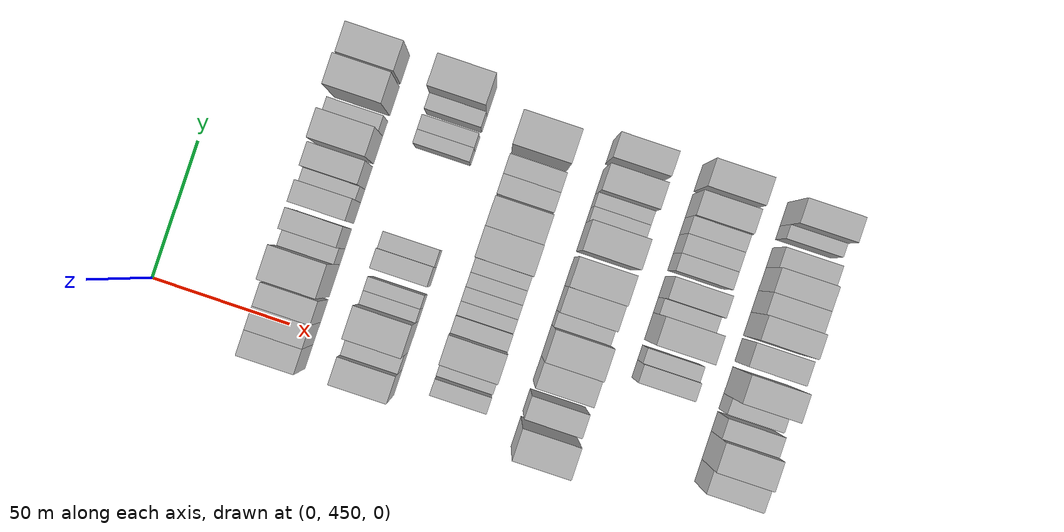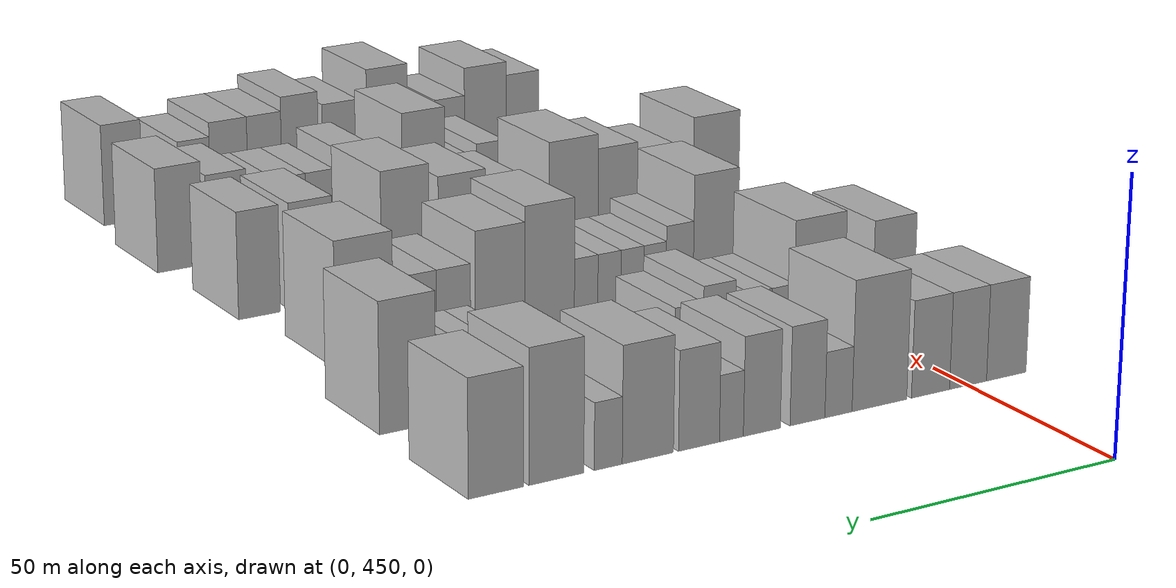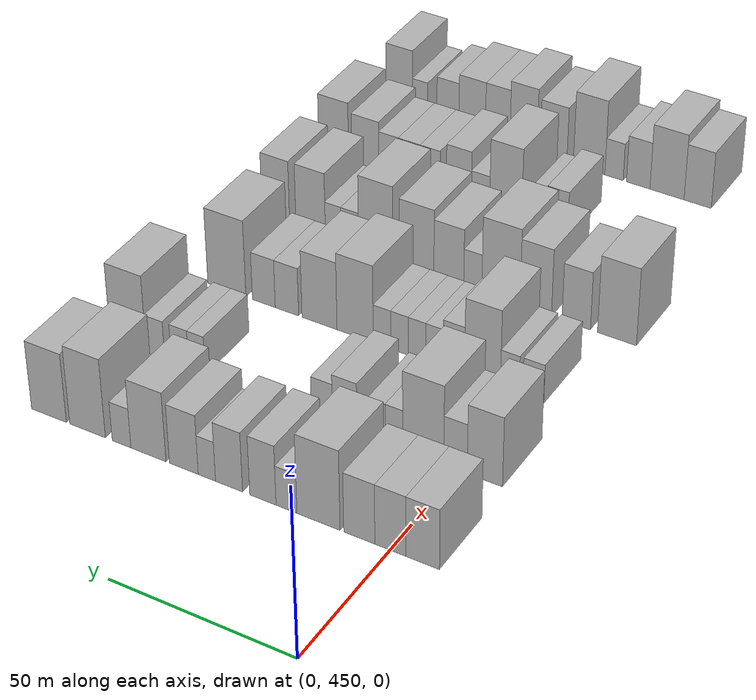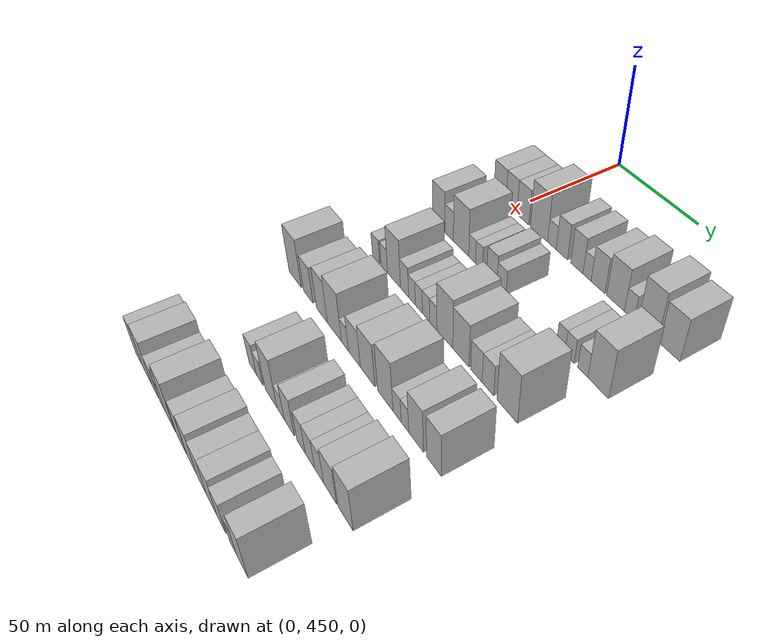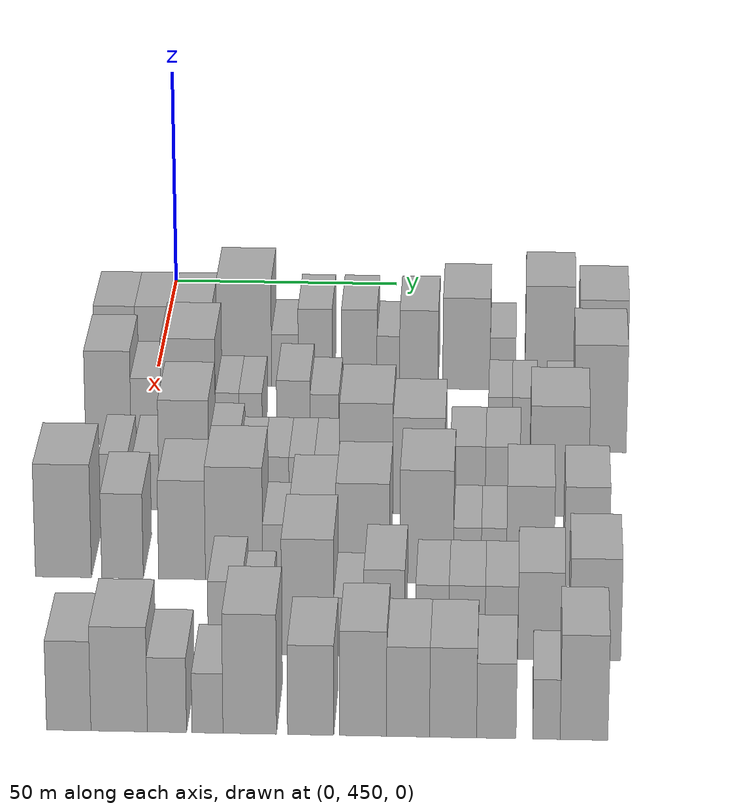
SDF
<sdf version="1.6">
 <world name="default">
  <model name="building_110">
   <static>1</static>
   <pose>50.0000 441.4744 0 0.000000 0.000000 0.000000</pose>
   <link name="link">
    <pose>0 0 9.00 0 0 0</pose>
    <collision name="collision"><geometry><box><size>20.0000 8.8211 18.0000</size></box></geometry></collision>
    <visual name="visual">
     <cast_shadows>0</cast_shadows>
     <geometry><box><size>20.0000 8.8211 18.0000</size></box></geometry>
     <material>
      <script>
       <uri>model://HANNAS_wall/materials/scripts</uri>
       <uri>model://HANNAS_wall/materials/textures</uri>
       <name>vrc/HANNAS_wall</name>
      </script>
     </material>
    </visual>
   </link>
  </model>
  <model name="building_111">
   <static>1</static>
   <pose>50.0000 449.9578 0 0.000000 0.000000 0.000000</pose>
   <link name="link">
    <pose>0 0 9.00 0 0 0</pose>
    <collision name="collision"><geometry><box><size>20.0000 8.1456 18.0000</size></box></geometry></collision>
    <visual name="visual">
     <cast_shadows>0</cast_shadows>
     <geometry><box><size>20.0000 8.1456 18.0000</size></box></geometry>
     <material>
      <script>
       <uri>model://HANNAS_wall/materials/scripts</uri>
       <uri>model://HANNAS_wall/materials/textures</uri>
       <name>vrc/HANNAS_wall</name>
      </script>
     </material>
    </visual>
   </link>
  </model>
  <model name="building_112">
   <static>1</static>
   <pose>50.0000 458.1812 0 0.000000 0.000000 0.000000</pose>
   <link name="link">
    <pose>0 0 9.00 0 0 0</pose>
    <collision name="collision"><geometry><box><size>20.0000 8.3010 18.0000</size></box></geometry></collision>
    <visual name="visual">
     <cast_shadows>0</cast_shadows>
     <geometry><box><size>20.0000 8.3010 18.0000</size></box></geometry>
     <material>
      <script>
       <uri>model://HANNAS_wall/materials/scripts</uri>
       <uri>model://HANNAS_wall/materials/textures</uri>
       <name>vrc/HANNAS_wall</name>
      </script>
     </material>
    </visual>
   </link>
  </model>
  <model name="building_113">
   <static>1</static>
   <pose>50.0000 469.1792 0 0.000000 0.000000 0.000000</pose>
   <link name="link">
    <pose>0 0 12.00 0 0 0</pose>
    <collision name="collision"><geometry><box><size>20.0000 11.6951 24.0000</size></box></geometry></collision>
    <visual name="visual">
     <cast_shadows>0</cast_shadows>
     <geometry><box><size>20.0000 11.6951 24.0000</size></box></geometry>
     <material>
      <script>
       <uri>model://HANNAS_wall/materials/scripts</uri>
       <uri>model://HANNAS_wall/materials/textures</uri>
       <name>vrc/HANNAS_wall</name>
      </script>
     </material>
    </visual>
   </link>
  </model>
  <model name="building_114">
   <static>1</static>
   <pose>50.0000 477.8852 0 0.000000 0.000000 0.000000</pose>
   <link name="link">
    <pose>0 0 6.00 0 0 0</pose>
    <collision name="collision"><geometry><box><size>20.0000 5.7170 12.0000</size></box></geometry></collision>
    <visual name="visual">
     <cast_shadows>0</cast_shadows>
     <geometry><box><size>20.0000 5.7170 12.0000</size></box></geometry>
     <material>
      <script>
       <uri>model://HANNAS_wall/materials/scripts</uri>
       <uri>model://HANNAS_wall/materials/textures</uri>
       <name>vrc/HANNAS_wall</name>
      </script>
     </material>
    </visual>
   </link>
  </model>
  <model name="building_115">
   <static>1</static>
   <pose>50.0000 484.3784 0 0.000000 0.000000 0.000000</pose>
   <link name="link">
    <pose>0 0 9.00 0 0 0</pose>
    <collision name="collision"><geometry><box><size>20.0000 7.2693 18.0000</size></box></geometry></collision>
    <visual name="visual">
     <cast_shadows>0</cast_shadows>
     <geometry><box><size>20.0000 7.2693 18.0000</size></box></geometry>
     <material>
      <script>
       <uri>model://HANNAS_wall/materials/scripts</uri>
       <uri>model://HANNAS_wall/materials/textures</uri>
       <name>vrc/HANNAS_wall</name>
      </script>
     </material>
    </visual>
   </link>
  </model>
  <model name="building_116">
   <static>1</static>
   <pose>50.0000 493.8040 0 0.000000 0.000000 0.000000</pose>
   <link name="link">
    <pose>0 0 9.00 0 0 0</pose>
    <collision name="collision"><geometry><box><size>20.0000 7.5820 18.0000</size></box></geometry></collision>
    <visual name="visual">
     <cast_shadows>0</cast_shadows>
     <geometry><box><size>20.0000 7.5820 18.0000</size></box></geometry>
     <material>
      <script>
       <uri>model://HANNAS_wall/materials/scripts</uri>
       <uri>model://HANNAS_wall/materials/textures</uri>
       <name>vrc/HANNAS_wall</name>
      </script>
     </material>
    </visual>
   </link>
  </model>
  <model name="building_117">
   <static>1</static>
   <pose>50.0000 500.0279 0 0.000000 0.000000 0.000000</pose>
   <link name="link">
    <pose>0 0 6.00 0 0 0</pose>
    <collision name="collision"><geometry><box><size>20.0000 4.8657 12.0000</size></box></geometry></collision>
    <visual name="visual">
     <cast_shadows>0</cast_shadows>
     <geometry><box><size>20.0000 4.8657 12.0000</size></box></geometry>
     <material>
      <script>
       <uri>model://HANNAS_wall/materials/scripts</uri>
       <uri>model://HANNAS_wall/materials/textures</uri>
       <name>vrc/HANNAS_wall</name>
      </script>
     </material>
    </visual>
   </link>
  </model>
  <model name="building_118">
   <static>1</static>
   <pose>50.0000 506.5647 0 0.000000 0.000000 0.000000</pose>
   <link name="link">
    <pose>0 0 9.00 0 0 0</pose>
    <collision name="collision"><geometry><box><size>20.0000 8.2078 18.0000</size></box></geometry></collision>
    <visual name="visual">
     <cast_shadows>0</cast_shadows>
     <geometry><box><size>20.0000 8.2078 18.0000</size></box></geometry>
     <material>
      <script>
       <uri>model://HANNAS_wall/materials/scripts</uri>
       <uri>model://HANNAS_wall/materials/textures</uri>
       <name>vrc/HANNAS_wall</name>
      </script>
     </material>
    </visual>
   </link>
  </model>
  <model name="building_119">
   <static>1</static>
   <pose>50.0000 516.7230 0 0.000000 0.000000 0.000000</pose>
   <link name="link">
    <pose>0 0 10.50 0 0 0</pose>
    <collision name="collision"><geometry><box><size>20.0000 10.1088 21.0000</size></box></geometry></collision>
    <visual name="visual">
     <cast_shadows>0</cast_shadows>
     <geometry><box><size>20.0000 10.1088 21.0000</size></box></geometry>
     <material>
      <script>
       <uri>model://HANNAS_wall/materials/scripts</uri>
       <uri>model://HANNAS_wall/materials/textures</uri>
       <name>vrc/HANNAS_wall</name>
      </script>
     </material>
    </visual>
   </link>
  </model>
  <model name="building_120">
   <static>1</static>
   <pose>50.0000 524.4996 0 0.000000 0.000000 0.000000</pose>
   <link name="link">
    <pose>0 0 6.00 0 0 0</pose>
    <collision name="collision"><geometry><box><size>20.0000 5.4445 12.0000</size></box></geometry></collision>
    <visual name="visual">
     <cast_shadows>0</cast_shadows>
     <geometry><box><size>20.0000 5.4445 12.0000</size></box></geometry>
     <material>
      <script>
       <uri>model://HANNAS_wall/materials/scripts</uri>
       <uri>model://HANNAS_wall/materials/textures</uri>
       <name>vrc/HANNAS_wall</name>
      </script>
     </material>
    </visual>
   </link>
  </model>
  <model name="building_121">
   <static>1</static>
   <pose>50.0000 534.4887 0 0.000000 0.000000 0.000000</pose>
   <link name="link">
    <pose>0 0 12.00 0 0 0</pose>
    <collision name="collision"><geometry><box><size>20.0000 10.5336 24.0000</size></box></geometry></collision>
    <visual name="visual">
     <cast_shadows>0</cast_shadows>
     <geometry><box><size>20.0000 10.5336 24.0000</size></box></geometry>
     <material>
      <script>
       <uri>model://HANNAS_wall/materials/scripts</uri>
       <uri>model://HANNAS_wall/materials/textures</uri>
       <name>vrc/HANNAS_wall</name>
      </script>
     </material>
    </visual>
   </link>
  </model>
  <model name="building_122">
   <static>1</static>
   <pose>50.0000 545.9524 0 0.000000 0.000000 0.000000</pose>
   <link name="link">
    <pose>0 0 10.50 0 0 0</pose>
    <collision name="collision"><geometry><box><size>20.0000 10.3938 21.0000</size></box></geometry></collision>
    <visual name="visual">
     <cast_shadows>0</cast_shadows>
     <geometry><box><size>20.0000 10.3938 21.0000</size></box></geometry>
     <material>
      <script>
       <uri>model://HANNAS_wall/materials/scripts</uri>
       <uri>model://HANNAS_wall/materials/textures</uri>
       <name>vrc/HANNAS_wall</name>
      </script>
     </material>
    </visual>
   </link>
  </model>
  <model name="building_229">
   <static>1</static>
   <pose>82.0000 442.8621 0 0.000000 0.000000 0.000000</pose>
   <link name="link">
    <pose>0 0 10.50 0 0 0</pose>
    <collision name="collision"><geometry><box><size>20.0000 9.4889 21.0000</size></box></geometry></collision>
    <visual name="visual">
     <cast_shadows>0</cast_shadows>
     <geometry><box><size>20.0000 9.4889 21.0000</size></box></geometry>
     <material>
      <script>
       <uri>model://HANNAS_wall/materials/scripts</uri>
       <uri>model://HANNAS_wall/materials/textures</uri>
       <name>vrc/HANNAS_wall</name>
      </script>
     </material>
    </visual>
   </link>
  </model>
  <model name="building_230">
   <static>1</static>
   <pose>82.0000 450.7802 0 0.000000 0.000000 0.000000</pose>
   <link name="link">
    <pose>0 0 7.50 0 0 0</pose>
    <collision name="collision"><geometry><box><size>20.0000 6.3472 15.0000</size></box></geometry></collision>
    <visual name="visual">
     <cast_shadows>0</cast_shadows>
     <geometry><box><size>20.0000 6.3472 15.0000</size></box></geometry>
     <material>
      <script>
       <uri>model://HANNAS_wall/materials/scripts</uri>
       <uri>model://HANNAS_wall/materials/textures</uri>
       <name>vrc/HANNAS_wall</name>
      </script>
     </material>
    </visual>
   </link>
  </model>
  <model name="building_231">
   <static>1</static>
   <pose>82.0000 459.5837 0 0.000000 0.000000 0.000000</pose>
   <link name="link">
    <pose>0 0 12.00 0 0 0</pose>
    <collision name="collision"><geometry><box><size>20.0000 11.2597 24.0000</size></box></geometry></collision>
    <visual name="visual">
     <cast_shadows>0</cast_shadows>
     <geometry><box><size>20.0000 11.2597 24.0000</size></box></geometry>
     <material>
      <script>
       <uri>model://HANNAS_wall/materials/scripts</uri>
       <uri>model://HANNAS_wall/materials/textures</uri>
       <name>vrc/HANNAS_wall</name>
      </script>
     </material>
    </visual>
   </link>
  </model>
  <model name="building_232">
   <static>1</static>
   <pose>82.0000 467.6269 0 0.000000 0.000000 0.000000</pose>
   <link name="link">
    <pose>0 0 6.00 0 0 0</pose>
    <collision name="collision"><geometry><box><size>20.0000 4.8267 12.0000</size></box></geometry></collision>
    <visual name="visual">
     <cast_shadows>0</cast_shadows>
     <geometry><box><size>20.0000 4.8267 12.0000</size></box></geometry>
     <material>
      <script>
       <uri>model://HANNAS_wall/materials/scripts</uri>
       <uri>model://HANNAS_wall/materials/textures</uri>
       <name>vrc/HANNAS_wall</name>
      </script>
     </material>
    </visual>
   </link>
  </model>
  <model name="building_233">
   <static>1</static>
   <pose>82.0000 472.4615 0 0.000000 0.000000 0.000000</pose>
   <link name="link">
    <pose>0 0 6.00 0 0 0</pose>
    <collision name="collision"><geometry><box><size>20.0000 4.8425 12.0000</size></box></geometry></collision>
    <visual name="visual">
     <cast_shadows>0</cast_shadows>
     <geometry><box><size>20.0000 4.8425 12.0000</size></box></geometry>
     <material>
      <script>
       <uri>model://HANNAS_wall/materials/scripts</uri>
       <uri>model://HANNAS_wall/materials/textures</uri>
       <name>vrc/HANNAS_wall</name>
      </script>
     </material>
    </visual>
   </link>
  </model>
  <model name="building_234">
   <static>1</static>
   <pose>82.0000 481.3458 0 0.000000 0.000000 0.000000</pose>
   <link name="link">
    <pose>0 0 7.50 0 0 0</pose>
    <collision name="collision"><geometry><box><size>20.0000 6.9262 15.0000</size></box></geometry></collision>
    <visual name="visual">
     <cast_shadows>0</cast_shadows>
     <geometry><box><size>20.0000 6.9262 15.0000</size></box></geometry>
     <material>
      <script>
       <uri>model://HANNAS_wall/materials/scripts</uri>
       <uri>model://HANNAS_wall/materials/textures</uri>
       <name>vrc/HANNAS_wall</name>
      </script>
     </material>
    </visual>
   </link>
  </model>
  <model name="building_235">
   <static>1</static>
   <pose>82.0000 487.8055 0 0.000000 0.000000 0.000000</pose>
   <link name="link">
    <pose>0 0 6.00 0 0 0</pose>
    <collision name="collision"><geometry><box><size>20.0000 5.9932 12.0000</size></box></geometry></collision>
    <visual name="visual">
     <cast_shadows>0</cast_shadows>
     <geometry><box><size>20.0000 5.9932 12.0000</size></box></geometry>
     <material>
      <script>
       <uri>model://HANNAS_wall/materials/scripts</uri>
       <uri>model://HANNAS_wall/materials/textures</uri>
       <name>vrc/HANNAS_wall</name>
      </script>
     </material>
    </visual>
   </link>
  </model>
  <model name="building_236">
   <static>1</static>
   <pose>82.0000 524.1524 0 0.000000 0.000000 0.000000</pose>
   <link name="link">
    <pose>0 0 6.00 0 0 0</pose>
    <collision name="collision"><geometry><box><size>20.0000 4.9002 12.0000</size></box></geometry></collision>
    <visual name="visual">
     <cast_shadows>0</cast_shadows>
     <geometry><box><size>20.0000 4.9002 12.0000</size></box></geometry>
     <material>
      <script>
       <uri>model://HANNAS_wall/materials/scripts</uri>
       <uri>model://HANNAS_wall/materials/textures</uri>
       <name>vrc/HANNAS_wall</name>
      </script>
     </material>
    </visual>
   </link>
  </model>
  <model name="building_237">
   <static>1</static>
   <pose>82.0000 529.2027 0 0.000000 0.000000 0.000000</pose>
   <link name="link">
    <pose>0 0 6.00 0 0 0</pose>
    <collision name="collision"><geometry><box><size>20.0000 5.2006 12.0000</size></box></geometry></collision>
    <visual name="visual">
     <cast_shadows>0</cast_shadows>
     <geometry><box><size>20.0000 5.2006 12.0000</size></box></geometry>
     <material>
      <script>
       <uri>model://HANNAS_wall/materials/scripts</uri>
       <uri>model://HANNAS_wall/materials/textures</uri>
       <name>vrc/HANNAS_wall</name>
      </script>
     </material>
    </visual>
   </link>
  </model>
  <model name="building_238">
   <static>1</static>
   <pose>82.0000 536.5820 0 0.000000 0.000000 0.000000</pose>
   <link name="link">
    <pose>0 0 6.00 0 0 0</pose>
    <collision name="collision"><geometry><box><size>20.0000 5.5580 12.0000</size></box></geometry></collision>
    <visual name="visual">
     <cast_shadows>0</cast_shadows>
     <geometry><box><size>20.0000 5.5580 12.0000</size></box></geometry>
     <material>
      <script>
       <uri>model://HANNAS_wall/materials/scripts</uri>
       <uri>model://HANNAS_wall/materials/textures</uri>
       <name>vrc/HANNAS_wall</name>
      </script>
     </material>
    </visual>
   </link>
  </model>
  <model name="building_239">
   <static>1</static>
   <pose>82.0000 544.8209 0 0.000000 0.000000 0.000000</pose>
   <link name="link">
    <pose>0 0 12.00 0 0 0</pose>
    <collision name="collision"><geometry><box><size>20.0000 10.9198 24.0000</size></box></geometry></collision>
    <visual name="visual">
     <cast_shadows>0</cast_shadows>
     <geometry><box><size>20.0000 10.9198 24.0000</size></box></geometry>
     <material>
      <script>
       <uri>model://HANNAS_wall/materials/scripts</uri>
       <uri>model://HANNAS_wall/materials/textures</uri>
       <name>vrc/HANNAS_wall</name>
      </script>
     </material>
    </visual>
   </link>
  </model>
  <model name="building_346">
   <static>1</static>
   <pose>114.0000 446.8320 0 0.000000 0.000000 0.000000</pose>
   <link name="link">
    <pose>0 0 6.00 0 0 0</pose>
    <collision name="collision"><geometry><box><size>20.0000 5.8238 12.0000</size></box></geometry></collision>
    <visual name="visual">
     <cast_shadows>0</cast_shadows>
     <geometry><box><size>20.0000 5.8238 12.0000</size></box></geometry>
     <material>
      <script>
       <uri>model://HANNAS_wall/materials/scripts</uri>
       <uri>model://HANNAS_wall/materials/textures</uri>
       <name>vrc/HANNAS_wall</name>
      </script>
     </material>
    </visual>
   </link>
  </model>
  <model name="building_347">
   <static>1</static>
   <pose>114.0000 453.3518 0 0.000000 0.000000 0.000000</pose>
   <link name="link">
    <pose>0 0 6.00 0 0 0</pose>
    <collision name="collision"><geometry><box><size>20.0000 5.2157 12.0000</size></box></geometry></collision>
    <visual name="visual">
     <cast_shadows>0</cast_shadows>
     <geometry><box><size>20.0000 5.2157 12.0000</size></box></geometry>
     <material>
      <script>
       <uri>model://HANNAS_wall/materials/scripts</uri>
       <uri>model://HANNAS_wall/materials/textures</uri>
       <name>vrc/HANNAS_wall</name>
      </script>
     </material>
    </visual>
   </link>
  </model>
  <model name="building_348">
   <static>1</static>
   <pose>114.0000 460.9952 0 0.000000 0.000000 0.000000</pose>
   <link name="link">
    <pose>0 0 12.00 0 0 0</pose>
    <collision name="collision"><geometry><box><size>20.0000 10.0711 24.0000</size></box></geometry></collision>
    <visual name="visual">
     <cast_shadows>0</cast_shadows>
     <geometry><box><size>20.0000 10.0711 24.0000</size></box></geometry>
     <material>
      <script>
       <uri>model://HANNAS_wall/materials/scripts</uri>
       <uri>model://HANNAS_wall/materials/textures</uri>
       <name>vrc/HANNAS_wall</name>
      </script>
     </material>
    </visual>
   </link>
  </model>
  <model name="building_349">
   <static>1</static>
   <pose>114.0000 469.0816 0 0.000000 0.000000 0.000000</pose>
   <link name="link">
    <pose>0 0 7.50 0 0 0</pose>
    <collision name="collision"><geometry><box><size>20.0000 6.1016 15.0000</size></box></geometry></collision>
    <visual name="visual">
     <cast_shadows>0</cast_shadows>
     <geometry><box><size>20.0000 6.1016 15.0000</size></box></geometry>
     <material>
      <script>
       <uri>model://HANNAS_wall/materials/scripts</uri>
       <uri>model://HANNAS_wall/materials/textures</uri>
       <name>vrc/HANNAS_wall</name>
      </script>
     </material>
    </visual>
   </link>
  </model>
  <model name="building_350">
   <static>1</static>
   <pose>114.0000 474.6055 0 0.000000 0.000000 0.000000</pose>
   <link name="link">
    <pose>0 0 6.00 0 0 0</pose>
    <collision name="collision"><geometry><box><size>20.0000 4.9463 12.0000</size></box></geometry></collision>
    <visual name="visual">
     <cast_shadows>0</cast_shadows>
     <geometry><box><size>20.0000 4.9463 12.0000</size></box></geometry>
     <material>
      <script>
       <uri>model://HANNAS_wall/materials/scripts</uri>
       <uri>model://HANNAS_wall/materials/textures</uri>
       <name>vrc/HANNAS_wall</name>
      </script>
     </material>
    </visual>
   </link>
  </model>
  <model name="building_351">
   <static>1</static>
   <pose>114.0000 479.5859 0 0.000000 0.000000 0.000000</pose>
   <link name="link">
    <pose>0 0 6.00 0 0 0</pose>
    <collision name="collision"><geometry><box><size>20.0000 5.0145 12.0000</size></box></geometry></collision>
    <visual name="visual">
     <cast_shadows>0</cast_shadows>
     <geometry><box><size>20.0000 5.0145 12.0000</size></box></geometry>
     <material>
      <script>
       <uri>model://HANNAS_wall/materials/scripts</uri>
       <uri>model://HANNAS_wall/materials/textures</uri>
       <name>vrc/HANNAS_wall</name>
      </script>
     </material>
    </visual>
   </link>
  </model>
  <model name="building_352">
   <static>1</static>
   <pose>114.0000 484.6405 0 0.000000 0.000000 0.000000</pose>
   <link name="link">
    <pose>0 0 6.00 0 0 0</pose>
    <collision name="collision"><geometry><box><size>20.0000 5.0948 12.0000</size></box></geometry></collision>
    <visual name="visual">
     <cast_shadows>0</cast_shadows>
     <geometry><box><size>20.0000 5.0948 12.0000</size></box></geometry>
     <material>
      <script>
       <uri>model://HANNAS_wall/materials/scripts</uri>
       <uri>model://HANNAS_wall/materials/textures</uri>
       <name>vrc/HANNAS_wall</name>
      </script>
     </material>
    </visual>
   </link>
  </model>
  <model name="building_353">
   <static>1</static>
   <pose>114.0000 489.7379 0 0.000000 0.000000 0.000000</pose>
   <link name="link">
    <pose>0 0 6.00 0 0 0</pose>
    <collision name="collision"><geometry><box><size>20.0000 5.0999 12.0000</size></box></geometry></collision>
    <visual name="visual">
     <cast_shadows>0</cast_shadows>
     <geometry><box><size>20.0000 5.0999 12.0000</size></box></geometry>
     <material>
      <script>
       <uri>model://HANNAS_wall/materials/scripts</uri>
       <uri>model://HANNAS_wall/materials/textures</uri>
       <name>vrc/HANNAS_wall</name>
      </script>
     </material>
    </visual>
   </link>
  </model>
  <model name="building_354">
   <static>1</static>
   <pose>114.0000 497.6094 0 0.000000 0.000000 0.000000</pose>
   <link name="link">
    <pose>0 0 12.00 0 0 0</pose>
    <collision name="collision"><geometry><box><size>20.0000 10.6432 24.0000</size></box></geometry></collision>
    <visual name="visual">
     <cast_shadows>0</cast_shadows>
     <geometry><box><size>20.0000 10.6432 24.0000</size></box></geometry>
     <material>
      <script>
       <uri>model://HANNAS_wall/materials/scripts</uri>
       <uri>model://HANNAS_wall/materials/textures</uri>
       <name>vrc/HANNAS_wall</name>
      </script>
     </material>
    </visual>
   </link>
  </model>
  <model name="building_355">
   <static>1</static>
   <pose>114.0000 508.1557 0 0.000000 0.000000 0.000000</pose>
   <link name="link">
    <pose>0 0 10.50 0 0 0</pose>
    <collision name="collision"><geometry><box><size>20.0000 10.4495 21.0000</size></box></geometry></collision>
    <visual name="visual">
     <cast_shadows>0</cast_shadows>
     <geometry><box><size>20.0000 10.4495 21.0000</size></box></geometry>
     <material>
      <script>
       <uri>model://HANNAS_wall/materials/scripts</uri>
       <uri>model://HANNAS_wall/materials/textures</uri>
       <name>vrc/HANNAS_wall</name>
      </script>
     </material>
    </visual>
   </link>
  </model>
  <model name="building_356">
   <static>1</static>
   <pose>114.0000 517.9138 0 0.000000 0.000000 0.000000</pose>
   <link name="link">
    <pose>0 0 7.50 0 0 0</pose>
    <collision name="collision"><geometry><box><size>20.0000 7.0666 15.0000</size></box></geometry></collision>
    <visual name="visual">
     <cast_shadows>0</cast_shadows>
     <geometry><box><size>20.0000 7.0666 15.0000</size></box></geometry>
     <material>
      <script>
       <uri>model://HANNAS_wall/materials/scripts</uri>
       <uri>model://HANNAS_wall/materials/textures</uri>
       <name>vrc/HANNAS_wall</name>
      </script>
     </material>
    </visual>
   </link>
  </model>
  <model name="building_357">
   <static>1</static>
   <pose>114.0000 524.9077 0 0.000000 0.000000 0.000000</pose>
   <link name="link">
    <pose>0 0 7.50 0 0 0</pose>
    <collision name="collision"><geometry><box><size>20.0000 6.9212 15.0000</size></box></geometry></collision>
    <visual name="visual">
     <cast_shadows>0</cast_shadows>
     <geometry><box><size>20.0000 6.9212 15.0000</size></box></geometry>
     <material>
      <script>
       <uri>model://HANNAS_wall/materials/scripts</uri>
       <uri>model://HANNAS_wall/materials/textures</uri>
       <name>vrc/HANNAS_wall</name>
      </script>
     </material>
    </visual>
   </link>
  </model>
  <model name="building_358">
   <static>1</static>
   <pose>114.0000 536.2257 0 0.000000 0.000000 0.000000</pose>
   <link name="link">
    <pose>0 0 12.00 0 0 0</pose>
    <collision name="collision"><geometry><box><size>20.0000 11.7148 24.0000</size></box></geometry></collision>
    <visual name="visual">
     <cast_shadows>0</cast_shadows>
     <geometry><box><size>20.0000 11.7148 24.0000</size></box></geometry>
     <material>
      <script>
       <uri>model://HANNAS_wall/materials/scripts</uri>
       <uri>model://HANNAS_wall/materials/textures</uri>
       <name>vrc/HANNAS_wall</name>
      </script>
     </material>
    </visual>
   </link>
  </model>
  <model name="building_465">
   <static>1</static>
   <pose>146.0000 439.8196 0 0.000000 0.000000 0.000000</pose>
   <link name="link">
    <pose>0 0 12.00 0 0 0</pose>
    <collision name="collision"><geometry><box><size>20.0000 10.9309 24.0000</size></box></geometry></collision>
    <visual name="visual">
     <cast_shadows>0</cast_shadows>
     <geometry><box><size>20.0000 10.9309 24.0000</size></box></geometry>
     <material>
      <script>
       <uri>model://HANNAS_wall/materials/scripts</uri>
       <uri>model://HANNAS_wall/materials/textures</uri>
       <name>vrc/HANNAS_wall</name>
      </script>
     </material>
    </visual>
   </link>
  </model>
  <model name="building_466">
   <static>1</static>
   <pose>146.0000 451.3368 0 0.000000 0.000000 0.000000</pose>
   <link name="link">
    <pose>0 0 9.00 0 0 0</pose>
    <collision name="collision"><geometry><box><size>20.0000 8.1035 18.0000</size></box></geometry></collision>
    <visual name="visual">
     <cast_shadows>0</cast_shadows>
     <geometry><box><size>20.0000 8.1035 18.0000</size></box></geometry>
     <material>
      <script>
       <uri>model://HANNAS_wall/materials/scripts</uri>
       <uri>model://HANNAS_wall/materials/textures</uri>
       <name>vrc/HANNAS_wall</name>
      </script>
     </material>
    </visual>
   </link>
  </model>
  <model name="building_467">
   <static>1</static>
   <pose>146.0000 462.9442 0 0.000000 0.000000 0.000000</pose>
   <link name="link">
    <pose>0 0 10.50 0 0 0</pose>
    <collision name="collision"><geometry><box><size>20.0000 9.1115 21.0000</size></box></geometry></collision>
    <visual name="visual">
     <cast_shadows>0</cast_shadows>
     <geometry><box><size>20.0000 9.1115 21.0000</size></box></geometry>
     <material>
      <script>
       <uri>model://HANNAS_wall/materials/scripts</uri>
       <uri>model://HANNAS_wall/materials/textures</uri>
       <name>vrc/HANNAS_wall</name>
      </script>
     </material>
    </visual>
   </link>
  </model>
  <model name="building_468">
   <static>1</static>
   <pose>146.0000 473.0731 0 0.000000 0.000000 0.000000</pose>
   <link name="link">
    <pose>0 0 12.00 0 0 0</pose>
    <collision name="collision"><geometry><box><size>20.0000 11.1463 24.0000</size></box></geometry></collision>
    <visual name="visual">
     <cast_shadows>0</cast_shadows>
     <geometry><box><size>20.0000 11.1463 24.0000</size></box></geometry>
     <material>
      <script>
       <uri>model://HANNAS_wall/materials/scripts</uri>
       <uri>model://HANNAS_wall/materials/textures</uri>
       <name>vrc/HANNAS_wall</name>
      </script>
     </material>
    </visual>
   </link>
  </model>
  <model name="building_469">
   <static>1</static>
   <pose>146.0000 481.3169 0 0.000000 0.000000 0.000000</pose>
   <link name="link">
    <pose>0 0 6.00 0 0 0</pose>
    <collision name="collision"><geometry><box><size>20.0000 5.3411 12.0000</size></box></geometry></collision>
    <visual name="visual">
     <cast_shadows>0</cast_shadows>
     <geometry><box><size>20.0000 5.3411 12.0000</size></box></geometry>
     <material>
      <script>
       <uri>model://HANNAS_wall/materials/scripts</uri>
       <uri>model://HANNAS_wall/materials/textures</uri>
       <name>vrc/HANNAS_wall</name>
      </script>
     </material>
    </visual>
   </link>
  </model>
  <model name="building_470">
   <static>1</static>
   <pose>146.0000 488.4275 0 0.000000 0.000000 0.000000</pose>
   <link name="link">
    <pose>0 0 9.00 0 0 0</pose>
    <collision name="collision"><geometry><box><size>20.0000 8.8801 18.0000</size></box></geometry></collision>
    <visual name="visual">
     <cast_shadows>0</cast_shadows>
     <geometry><box><size>20.0000 8.8801 18.0000</size></box></geometry>
     <material>
      <script>
       <uri>model://HANNAS_wall/materials/scripts</uri>
       <uri>model://HANNAS_wall/materials/textures</uri>
       <name>vrc/HANNAS_wall</name>
      </script>
     </material>
    </visual>
   </link>
  </model>
  <model name="building_471">
   <static>1</static>
   <pose>146.0000 498.0686 0 0.000000 0.000000 0.000000</pose>
   <link name="link">
    <pose>0 0 10.50 0 0 0</pose>
    <collision name="collision"><geometry><box><size>20.0000 10.4021 21.0000</size></box></geometry></collision>
    <visual name="visual">
     <cast_shadows>0</cast_shadows>
     <geometry><box><size>20.0000 10.4021 21.0000</size></box></geometry>
     <material>
      <script>
       <uri>model://HANNAS_wall/materials/scripts</uri>
       <uri>model://HANNAS_wall/materials/textures</uri>
       <name>vrc/HANNAS_wall</name>
      </script>
     </material>
    </visual>
   </link>
  </model>
  <model name="building_472">
   <static>1</static>
   <pose>146.0000 510.4589 0 0.000000 0.000000 0.000000</pose>
   <link name="link">
    <pose>0 0 12.00 0 0 0</pose>
    <collision name="collision"><geometry><box><size>20.0000 10.3785 24.0000</size></box></geometry></collision>
    <visual name="visual">
     <cast_shadows>0</cast_shadows>
     <geometry><box><size>20.0000 10.3785 24.0000</size></box></geometry>
     <material>
      <script>
       <uri>model://HANNAS_wall/materials/scripts</uri>
       <uri>model://HANNAS_wall/materials/textures</uri>
       <name>vrc/HANNAS_wall</name>
      </script>
     </material>
    </visual>
   </link>
  </model>
  <model name="building_473">
   <static>1</static>
   <pose>146.0000 518.3356 0 0.000000 0.000000 0.000000</pose>
   <link name="link">
    <pose>0 0 6.00 0 0 0</pose>
    <collision name="collision"><geometry><box><size>20.0000 5.3748 12.0000</size></box></geometry></collision>
    <visual name="visual">
     <cast_shadows>0</cast_shadows>
     <geometry><box><size>20.0000 5.3748 12.0000</size></box></geometry>
     <material>
      <script>
       <uri>model://HANNAS_wall/materials/scripts</uri>
       <uri>model://HANNAS_wall/materials/textures</uri>
       <name>vrc/HANNAS_wall</name>
      </script>
     </material>
    </visual>
   </link>
  </model>
  <model name="building_474">
   <static>1</static>
   <pose>146.0000 523.4687 0 0.000000 0.000000 0.000000</pose>
   <link name="link">
    <pose>0 0 6.00 0 0 0</pose>
    <collision name="collision"><geometry><box><size>20.0000 4.8915 12.0000</size></box></geometry></collision>
    <visual name="visual">
     <cast_shadows>0</cast_shadows>
     <geometry><box><size>20.0000 4.8915 12.0000</size></box></geometry>
     <material>
      <script>
       <uri>model://HANNAS_wall/materials/scripts</uri>
       <uri>model://HANNAS_wall/materials/textures</uri>
       <name>vrc/HANNAS_wall</name>
      </script>
     </material>
    </visual>
   </link>
  </model>
  <model name="building_475">
   <static>1</static>
   <pose>146.0000 530.5027 0 0.000000 0.000000 0.000000</pose>
   <link name="link">
    <pose>0 0 10.50 0 0 0</pose>
    <collision name="collision"><geometry><box><size>20.0000 9.1763 21.0000</size></box></geometry></collision>
    <visual name="visual">
     <cast_shadows>0</cast_shadows>
     <geometry><box><size>20.0000 9.1763 21.0000</size></box></geometry>
     <material>
      <script>
       <uri>model://HANNAS_wall/materials/scripts</uri>
       <uri>model://HANNAS_wall/materials/textures</uri>
       <name>vrc/HANNAS_wall</name>
      </script>
     </material>
    </visual>
   </link>
  </model>
  <model name="building_476">
   <static>1</static>
   <pose>146.0000 541.4226 0 0.000000 0.000000 0.000000</pose>
   <link name="link">
    <pose>0 0 10.50 0 0 0</pose>
    <collision name="collision"><geometry><box><size>20.0000 8.6635 21.0000</size></box></geometry></collision>
    <visual name="visual">
     <cast_shadows>0</cast_shadows>
     <geometry><box><size>20.0000 8.6635 21.0000</size></box></geometry>
     <material>
      <script>
       <uri>model://HANNAS_wall/materials/scripts</uri>
       <uri>model://HANNAS_wall/materials/textures</uri>
       <name>vrc/HANNAS_wall</name>
      </script>
     </material>
    </visual>
   </link>
  </model>
  <model name="building_580">
   <static>1</static>
   <pose>178.0000 473.4285 0 0.000000 0.000000 0.000000</pose>
   <link name="link">
    <pose>0 0 7.50 0 0 0</pose>
    <collision name="collision"><geometry><box><size>20.0000 6.3761 15.0000</size></box></geometry></collision>
    <visual name="visual">
     <cast_shadows>0</cast_shadows>
     <geometry><box><size>20.0000 6.3761 15.0000</size></box></geometry>
     <material>
      <script>
       <uri>model://HANNAS_wall/materials/scripts</uri>
       <uri>model://HANNAS_wall/materials/textures</uri>
       <name>vrc/HANNAS_wall</name>
      </script>
     </material>
    </visual>
   </link>
  </model>
  <model name="building_581">
   <static>1</static>
   <pose>178.0000 479.3222 0 0.000000 0.000000 0.000000</pose>
   <link name="link">
    <pose>0 0 6.00 0 0 0</pose>
    <collision name="collision"><geometry><box><size>20.0000 5.4113 12.0000</size></box></geometry></collision>
    <visual name="visual">
     <cast_shadows>0</cast_shadows>
     <geometry><box><size>20.0000 5.4113 12.0000</size></box></geometry>
     <material>
      <script>
       <uri>model://HANNAS_wall/materials/scripts</uri>
       <uri>model://HANNAS_wall/materials/textures</uri>
       <name>vrc/HANNAS_wall</name>
      </script>
     </material>
    </visual>
   </link>
  </model>
  <model name="building_582">
   <static>1</static>
   <pose>178.0000 488.9091 0 0.000000 0.000000 0.000000</pose>
   <link name="link">
    <pose>0 0 12.00 0 0 0</pose>
    <collision name="collision"><geometry><box><size>20.0000 9.7626 24.0000</size></box></geometry></collision>
    <visual name="visual">
     <cast_shadows>0</cast_shadows>
     <geometry><box><size>20.0000 9.7626 24.0000</size></box></geometry>
     <material>
      <script>
       <uri>model://HANNAS_wall/materials/scripts</uri>
       <uri>model://HANNAS_wall/materials/textures</uri>
       <name>vrc/HANNAS_wall</name>
      </script>
     </material>
    </visual>
   </link>
  </model>
  <model name="building_583">
   <static>1</static>
   <pose>178.0000 496.6133 0 0.000000 0.000000 0.000000</pose>
   <link name="link">
    <pose>0 0 6.00 0 0 0</pose>
    <collision name="collision"><geometry><box><size>20.0000 5.6458 12.0000</size></box></geometry></collision>
    <visual name="visual">
     <cast_shadows>0</cast_shadows>
     <geometry><box><size>20.0000 5.6458 12.0000</size></box></geometry>
     <material>
      <script>
       <uri>model://HANNAS_wall/materials/scripts</uri>
       <uri>model://HANNAS_wall/materials/textures</uri>
       <name>vrc/HANNAS_wall</name>
      </script>
     </material>
    </visual>
   </link>
  </model>
  <model name="building_584">
   <static>1</static>
   <pose>178.0000 503.2710 0 0.000000 0.000000 0.000000</pose>
   <link name="link">
    <pose>0 0 9.00 0 0 0</pose>
    <collision name="collision"><geometry><box><size>20.0000 7.6696 18.0000</size></box></geometry></collision>
    <visual name="visual">
     <cast_shadows>0</cast_shadows>
     <geometry><box><size>20.0000 7.6696 18.0000</size></box></geometry>
     <material>
      <script>
       <uri>model://HANNAS_wall/materials/scripts</uri>
       <uri>model://HANNAS_wall/materials/textures</uri>
       <name>vrc/HANNAS_wall</name>
      </script>
     </material>
    </visual>
   </link>
  </model>
  <model name="building_585">
   <static>1</static>
   <pose>178.0000 512.2101 0 0.000000 0.000000 0.000000</pose>
   <link name="link">
    <pose>0 0 7.50 0 0 0</pose>
    <collision name="collision"><geometry><box><size>20.0000 6.2085 15.0000</size></box></geometry></collision>
    <visual name="visual">
     <cast_shadows>0</cast_shadows>
     <geometry><box><size>20.0000 6.2085 15.0000</size></box></geometry>
     <material>
      <script>
       <uri>model://HANNAS_wall/materials/scripts</uri>
       <uri>model://HANNAS_wall/materials/textures</uri>
       <name>vrc/HANNAS_wall</name>
      </script>
     </material>
    </visual>
   </link>
  </model>
  <model name="building_586">
   <static>1</static>
   <pose>178.0000 518.7120 0 0.000000 0.000000 0.000000</pose>
   <link name="link">
    <pose>0 0 7.50 0 0 0</pose>
    <collision name="collision"><geometry><box><size>20.0000 6.7953 15.0000</size></box></geometry></collision>
    <visual name="visual">
     <cast_shadows>0</cast_shadows>
     <geometry><box><size>20.0000 6.7953 15.0000</size></box></geometry>
     <material>
      <script>
       <uri>model://HANNAS_wall/materials/scripts</uri>
       <uri>model://HANNAS_wall/materials/textures</uri>
       <name>vrc/HANNAS_wall</name>
      </script>
     </material>
    </visual>
   </link>
  </model>
  <model name="building_587">
   <static>1</static>
   <pose>178.0000 525.1941 0 0.000000 0.000000 0.000000</pose>
   <link name="link">
    <pose>0 0 7.50 0 0 0</pose>
    <collision name="collision"><geometry><box><size>20.0000 6.1689 15.0000</size></box></geometry></collision>
    <visual name="visual">
     <cast_shadows>0</cast_shadows>
     <geometry><box><size>20.0000 6.1689 15.0000</size></box></geometry>
     <material>
      <script>
       <uri>model://HANNAS_wall/materials/scripts</uri>
       <uri>model://HANNAS_wall/materials/textures</uri>
       <name>vrc/HANNAS_wall</name>
      </script>
     </material>
    </visual>
   </link>
  </model>
  <model name="building_588">
   <static>1</static>
   <pose>178.0000 532.6122 0 0.000000 0.000000 0.000000</pose>
   <link name="link">
    <pose>0 0 9.00 0 0 0</pose>
    <collision name="collision"><geometry><box><size>20.0000 8.6674 18.0000</size></box></geometry></collision>
    <visual name="visual">
     <cast_shadows>0</cast_shadows>
     <geometry><box><size>20.0000 8.6674 18.0000</size></box></geometry>
     <material>
      <script>
       <uri>model://HANNAS_wall/materials/scripts</uri>
       <uri>model://HANNAS_wall/materials/textures</uri>
       <name>vrc/HANNAS_wall</name>
      </script>
     </material>
    </visual>
   </link>
  </model>
  <model name="building_589">
   <static>1</static>
   <pose>178.0000 542.7405 0 0.000000 0.000000 0.000000</pose>
   <link name="link">
    <pose>0 0 10.50 0 0 0</pose>
    <collision name="collision"><geometry><box><size>20.0000 9.5892 21.0000</size></box></geometry></collision>
    <visual name="visual">
     <cast_shadows>0</cast_shadows>
     <geometry><box><size>20.0000 9.5892 21.0000</size></box></geometry>
     <material>
      <script>
       <uri>model://HANNAS_wall/materials/scripts</uri>
       <uri>model://HANNAS_wall/materials/textures</uri>
       <name>vrc/HANNAS_wall</name>
      </script>
     </material>
    </visual>
   </link>
  </model>
  <model name="building_702">
   <static>1</static>
   <pose>210.0000 447.1182 0 0.000000 0.000000 0.000000</pose>
   <link name="link">
    <pose>0 0 9.00 0 0 0</pose>
    <collision name="collision"><geometry><box><size>20.0000 8.0647 18.0000</size></box></geometry></collision>
    <visual name="visual">
     <cast_shadows>0</cast_shadows>
     <geometry><box><size>20.0000 8.0647 18.0000</size></box></geometry>
     <material>
      <script>
       <uri>model://HANNAS_wall/materials/scripts</uri>
       <uri>model://HANNAS_wall/materials/textures</uri>
       <name>vrc/HANNAS_wall</name>
      </script>
     </material>
    </visual>
   </link>
  </model>
  <model name="building_703">
   <static>1</static>
   <pose>210.0000 456.2814 0 0.000000 0.000000 0.000000</pose>
   <link name="link">
    <pose>0 0 10.50 0 0 0</pose>
    <collision name="collision"><geometry><box><size>20.0000 10.2616 21.0000</size></box></geometry></collision>
    <visual name="visual">
     <cast_shadows>0</cast_shadows>
     <geometry><box><size>20.0000 10.2616 21.0000</size></box></geometry>
     <material>
      <script>
       <uri>model://HANNAS_wall/materials/scripts</uri>
       <uri>model://HANNAS_wall/materials/textures</uri>
       <name>vrc/HANNAS_wall</name>
      </script>
     </material>
    </visual>
   </link>
  </model>
  <model name="building_704">
   <static>1</static>
   <pose>210.0000 464.9575 0 0.000000 0.000000 0.000000</pose>
   <link name="link">
    <pose>0 0 7.50 0 0 0</pose>
    <collision name="collision"><geometry><box><size>20.0000 7.0906 15.0000</size></box></geometry></collision>
    <visual name="visual">
     <cast_shadows>0</cast_shadows>
     <geometry><box><size>20.0000 7.0906 15.0000</size></box></geometry>
     <material>
      <script>
       <uri>model://HANNAS_wall/materials/scripts</uri>
       <uri>model://HANNAS_wall/materials/textures</uri>
       <name>vrc/HANNAS_wall</name>
      </script>
     </material>
    </visual>
   </link>
  </model>
  <model name="building_705">
   <static>1</static>
   <pose>210.0000 472.3060 0 0.000000 0.000000 0.000000</pose>
   <link name="link">
    <pose>0 0 6.00 0 0 0</pose>
    <collision name="collision"><geometry><box><size>20.0000 5.6064 12.0000</size></box></geometry></collision>
    <visual name="visual">
     <cast_shadows>0</cast_shadows>
     <geometry><box><size>20.0000 5.6064 12.0000</size></box></geometry>
     <material>
      <script>
       <uri>model://HANNAS_wall/materials/scripts</uri>
       <uri>model://HANNAS_wall/materials/textures</uri>
       <name>vrc/HANNAS_wall</name>
      </script>
     </material>
    </visual>
   </link>
  </model>
  <model name="building_706">
   <static>1</static>
   <pose>210.0000 479.9614 0 0.000000 0.000000 0.000000</pose>
   <link name="link">
    <pose>0 0 12.00 0 0 0</pose>
    <collision name="collision"><geometry><box><size>20.0000 9.7044 24.0000</size></box></geometry></collision>
    <visual name="visual">
     <cast_shadows>0</cast_shadows>
     <geometry><box><size>20.0000 9.7044 24.0000</size></box></geometry>
     <material>
      <script>
       <uri>model://HANNAS_wall/materials/scripts</uri>
       <uri>model://HANNAS_wall/materials/textures</uri>
       <name>vrc/HANNAS_wall</name>
      </script>
     </material>
    </visual>
   </link>
  </model>
  <model name="building_707">
   <static>1</static>
   <pose>210.0000 491.0025 0 0.000000 0.000000 0.000000</pose>
   <link name="link">
    <pose>0 0 9.00 0 0 0</pose>
    <collision name="collision"><geometry><box><size>20.0000 8.3777 18.0000</size></box></geometry></collision>
    <visual name="visual">
     <cast_shadows>0</cast_shadows>
     <geometry><box><size>20.0000 8.3777 18.0000</size></box></geometry>
     <material>
      <script>
       <uri>model://HANNAS_wall/materials/scripts</uri>
       <uri>model://HANNAS_wall/materials/textures</uri>
       <name>vrc/HANNAS_wall</name>
      </script>
     </material>
    </visual>
   </link>
  </model>
  <model name="building_708">
   <static>1</static>
   <pose>210.0000 500.4565 0 0.000000 0.000000 0.000000</pose>
   <link name="link">
    <pose>0 0 10.50 0 0 0</pose>
    <collision name="collision"><geometry><box><size>20.0000 8.5304 21.0000</size></box></geometry></collision>
    <visual name="visual">
     <cast_shadows>0</cast_shadows>
     <geometry><box><size>20.0000 8.5304 21.0000</size></box></geometry>
     <material>
      <script>
       <uri>model://HANNAS_wall/materials/scripts</uri>
       <uri>model://HANNAS_wall/materials/textures</uri>
       <name>vrc/HANNAS_wall</name>
      </script>
     </material>
    </visual>
   </link>
  </model>
  <model name="building_709">
   <static>1</static>
   <pose>210.0000 508.6160 0 0.000000 0.000000 0.000000</pose>
   <link name="link">
    <pose>0 0 9.00 0 0 0</pose>
    <collision name="collision"><geometry><box><size>20.0000 7.7885 18.0000</size></box></geometry></collision>
    <visual name="visual">
     <cast_shadows>0</cast_shadows>
     <geometry><box><size>20.0000 7.7885 18.0000</size></box></geometry>
     <material>
      <script>
       <uri>model://HANNAS_wall/materials/scripts</uri>
       <uri>model://HANNAS_wall/materials/textures</uri>
       <name>vrc/HANNAS_wall</name>
      </script>
     </material>
    </visual>
   </link>
  </model>
  <model name="building_710">
   <static>1</static>
   <pose>210.0000 516.7599 0 0.000000 0.000000 0.000000</pose>
   <link name="link">
    <pose>0 0 9.00 0 0 0</pose>
    <collision name="collision"><geometry><box><size>20.0000 8.4995 18.0000</size></box></geometry></collision>
    <visual name="visual">
     <cast_shadows>0</cast_shadows>
     <geometry><box><size>20.0000 8.4995 18.0000</size></box></geometry>
     <material>
      <script>
       <uri>model://HANNAS_wall/materials/scripts</uri>
       <uri>model://HANNAS_wall/materials/textures</uri>
       <name>vrc/HANNAS_wall</name>
      </script>
     </material>
    </visual>
   </link>
  </model>
  <model name="building_711">
   <static>1</static>
   <pose>210.0000 524.5692 0 0.000000 0.000000 0.000000</pose>
   <link name="link">
    <pose>0 0 7.50 0 0 0</pose>
    <collision name="collision"><geometry><box><size>20.0000 7.1191 15.0000</size></box></geometry></collision>
    <visual name="visual">
     <cast_shadows>0</cast_shadows>
     <geometry><box><size>20.0000 7.1191 15.0000</size></box></geometry>
     <material>
      <script>
       <uri>model://HANNAS_wall/materials/scripts</uri>
       <uri>model://HANNAS_wall/materials/textures</uri>
       <name>vrc/HANNAS_wall</name>
      </script>
     </material>
    </visual>
   </link>
  </model>
  <model name="building_712">
   <static>1</static>
   <pose>210.0000 533.6015 0 0.000000 0.000000 0.000000</pose>
   <link name="link">
    <pose>0 0 6.00 0 0 0</pose>
    <collision name="collision"><geometry><box><size>20.0000 4.9454 12.0000</size></box></geometry></collision>
    <visual name="visual">
     <cast_shadows>0</cast_shadows>
     <geometry><box><size>20.0000 4.9454 12.0000</size></box></geometry>
     <material>
      <script>
       <uri>model://HANNAS_wall/materials/scripts</uri>
       <uri>model://HANNAS_wall/materials/textures</uri>
       <name>vrc/HANNAS_wall</name>
      </script>
     </material>
    </visual>
   </link>
  </model>
  <model name="building_713">
   <static>1</static>
   <pose>210.0000 540.3802 0 0.000000 0.000000 0.000000</pose>
   <link name="link">
    <pose>0 0 10.50 0 0 0</pose>
    <collision name="collision"><geometry><box><size>20.0000 8.6118 21.0000</size></box></geometry></collision>
    <visual name="visual">
     <cast_shadows>0</cast_shadows>
     <geometry><box><size>20.0000 8.6118 21.0000</size></box></geometry>
     <material>
      <script>
       <uri>model://HANNAS_wall/materials/scripts</uri>
       <uri>model://HANNAS_wall/materials/textures</uri>
       <name>vrc/HANNAS_wall</name>
      </script>
     </material>
    </visual>
   </link>
  </model>
 </world>
</sdf>
